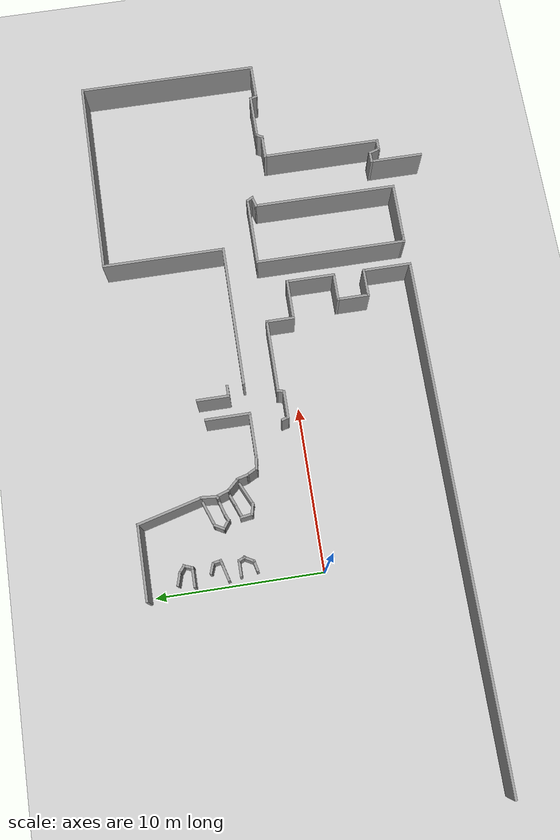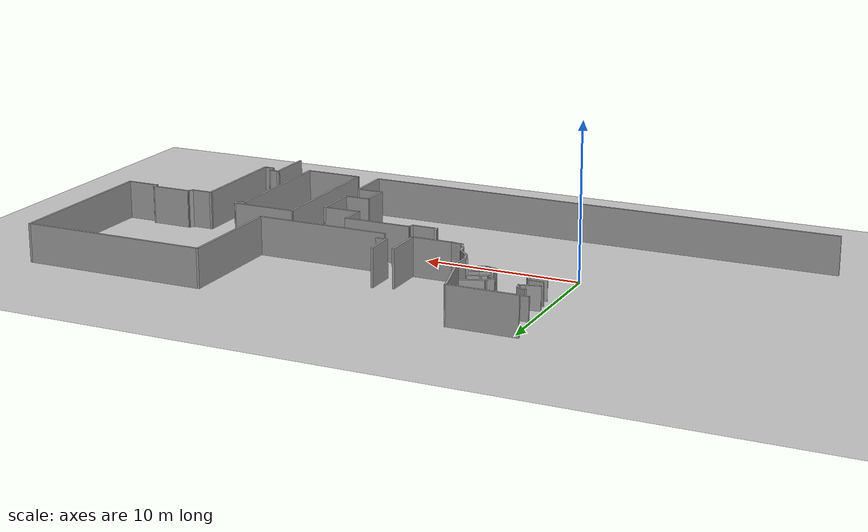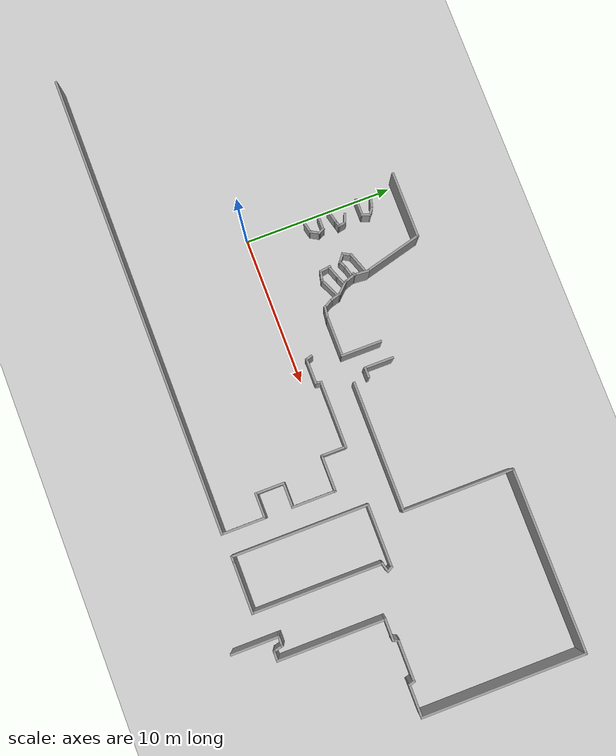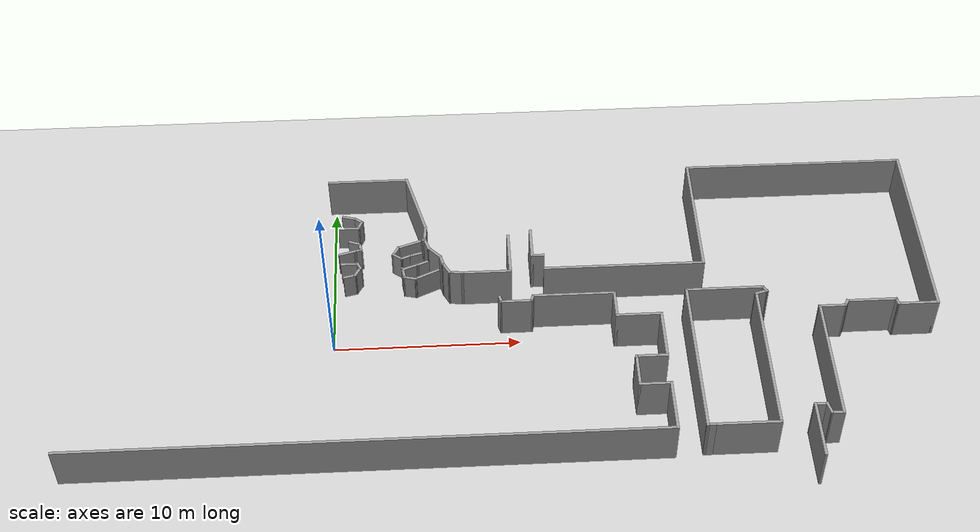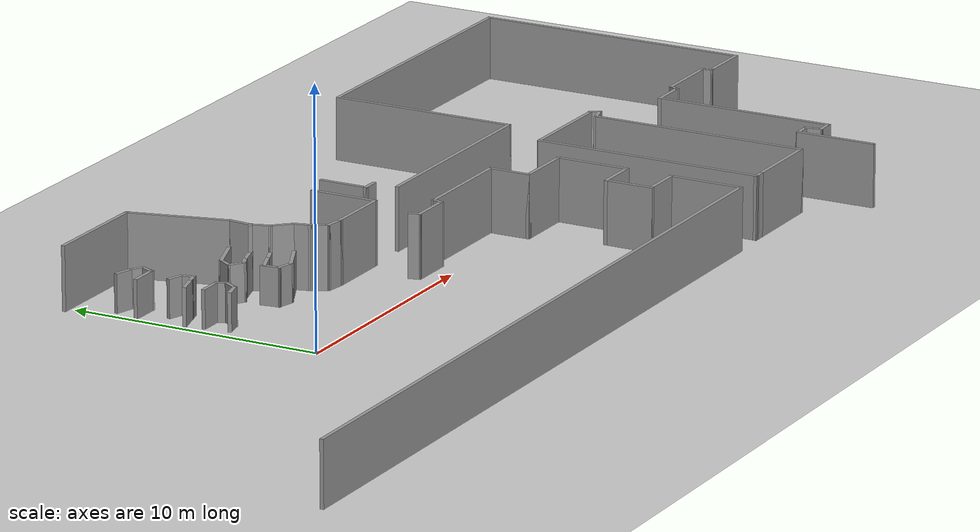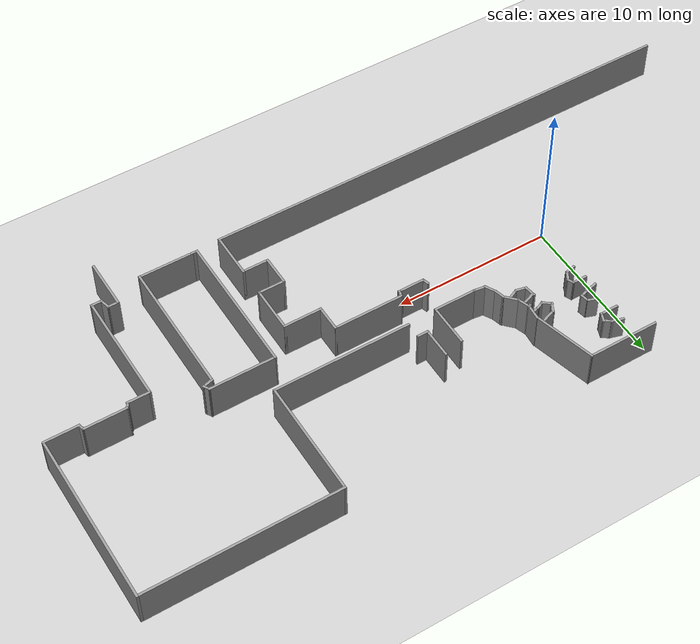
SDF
<sdf version="1.7">
 <world name="default">
  <model name="ground_plane">
   <static>1</static>
   <link name="link">
    <collision name="collision">
     <geometry><plane><normal>0 0 1</normal><size>100 100</size></plane></geometry>
     <surface><friction><ode><mu>100</mu><mu2>50</mu2></ode></friction></surface>
    </collision>
    <visual name="visual">
     <cast_shadows>0</cast_shadows>
     <geometry><plane><normal>0 0 1</normal><size>100 100</size></plane></geometry>
     <material>
      <script><uri>file://media/materials/scripts/gazebo.material</uri><name>Gazebo/Grey</name></script>
     </material>
    </visual>
   </link>
  </model>
  <model name="erzelli-sim">
   <pose>0.292126 0.213876 0 0 -0 0</pose>
   <link name="Wall_100">
    <collision name="Wall_100_Collision">
     <geometry><box><size>0.60562 0.15 1.5</size></box></geometry>
     <pose>0 0 0.75 0 -0 0</pose>
    </collision>
    <visual name="Wall_100_Visual">
     <pose>0 0 0.75 0 -0 0</pose>
     <geometry><box><size>0.60562 0.15 1.5</size></box></geometry>
     <material>
      <script><uri>file://media/materials/scripts/gazebo.material</uri><name>Gazebo/Grey</name></script>
      <ambient>1 1 1 1</ambient>
     </material>
     <meta><layer>0</layer></meta>
    </visual>
    <pose>3.64387 4.99562 0 0 -0 0.418447</pose>
   </link>
   <link name="Wall_101">
    <collision name="Wall_101_Collision">
     <geometry><box><size>0.969751 0.15 1.5</size></box></geometry>
     <pose>0 0 0.75 0 -0 0</pose>
    </collision>
    <visual name="Wall_101_Visual">
     <pose>0 0 0.75 0 -0 0</pose>
     <geometry><box><size>0.969751 0.15 1.5</size></box></geometry>
     <material>
      <script><uri>file://media/materials/scripts/gazebo.material</uri><name>Gazebo/Grey</name></script>
      <ambient>1 1 1 1</ambient>
     </material>
     <meta><layer>0</layer></meta>
    </visual>
    <pose>4.24537 5.20362 0 0 -0 0.285501</pose>
   </link>
   <link name="Wall_102">
    <collision name="Wall_102_Collision">
     <geometry><box><size>0.253443 0.15 2.5</size></box></geometry>
     <pose>0 0 1.25 0 -0 0</pose>
    </collision>
    <visual name="Wall_102_Visual">
     <pose>0 0 1.25 0 -0 0</pose>
     <geometry><box><size>0.253443 0.15 2.5</size></box></geometry>
     <material>
      <script><uri>file://media/materials/scripts/gazebo.material</uri><name>Gazebo/Grey</name></script>
      <ambient>1 1 1 1</ambient>
     </material>
     <meta><layer>0</layer></meta>
    </visual>
    <pose>4.68501 5.34248 0 0 -0 0.468665</pose>
   </link>
   <link name="Wall_103">
    <collision name="Wall_103_Collision">
     <geometry><box><size>0.881454 0.15 2.5</size></box></geometry>
     <pose>0 0 1.25 0 -0 0</pose>
    </collision>
    <visual name="Wall_103_Visual">
     <pose>0 0 1.25 0 -0 0</pose>
     <geometry><box><size>0.881454 0.15 2.5</size></box></geometry>
     <material>
      <script><uri>file://media/materials/scripts/gazebo.material</uri><name>Gazebo/Grey</name></script>
      <ambient>1 1 1 1</ambient>
     </material>
     <meta><layer>0</layer></meta>
    </visual>
    <pose>4.84701 5.01898 0 0 -0 -1.24842</pose>
   </link>
   <link name="Wall_104">
    <collision name="Wall_104_Collision">
     <geometry><box><size>0.89761 0.15 1.5</size></box></geometry>
     <pose>0 0 0.75 0 -0 0</pose>
    </collision>
    <visual name="Wall_104_Visual">
     <pose>0 0 0.75 0 -0 0</pose>
     <geometry><box><size>0.89761 0.15 1.5</size></box></geometry>
     <material>
      <script><uri>file://media/materials/scripts/gazebo.material</uri><name>Gazebo/Grey</name></script>
      <ambient>1 1 1 1</ambient>
     </material>
     <meta><layer>0</layer></meta>
    </visual>
    <pose>4.61587 4.53312 0 0 -0 -2.76059</pose>
   </link>
   <link name="Wall_105">
    <collision name="Wall_105_Collision">
     <geometry><box><size>0.941082 0.15 1.5</size></box></geometry>
     <pose>0 0 0.75 0 -0 0</pose>
    </collision>
    <visual name="Wall_105_Visual">
     <pose>0 0 0.75 0 -0 0</pose>
     <geometry><box><size>0.941082 0.15 1.5</size></box></geometry>
     <material>
      <script><uri>file://media/materials/scripts/gazebo.material</uri><name>Gazebo/Grey</name></script>
      <ambient>1 1 1 1</ambient>
     </material>
     <meta><layer>0</layer></meta>
    </visual>
    <pose>3.89837 4.25562 0 0 -0 -2.78386</pose>
   </link>
   <link name="Wall_107">
    <collision name="Wall_107_Collision">
     <geometry><box><size>0.804537 0.15 1.5</size></box></geometry>
     <pose>0 0 0.75 0 -0 0</pose>
    </collision>
    <visual name="Wall_107_Visual">
     <pose>0 0 0.75 0 -0 0</pose>
     <geometry><box><size>0.804537 0.15 1.5</size></box></geometry>
     <material>
      <script><uri>file://media/materials/scripts/gazebo.material</uri><name>Gazebo/Grey</name></script>
      <ambient>1 1 1 1</ambient>
     </material>
     <meta><layer>0</layer></meta>
    </visual>
    <pose>3.52837 3.83912 0 0 -0 -1.42825</pose>
   </link>
   <link name="Wall_108">
    <collision name="Wall_108_Collision">
     <geometry><box><size>0.767202 0.15 1.5</size></box></geometry>
     <pose>0 0 0.75 0 -0 0</pose>
    </collision>
    <visual name="Wall_108_Visual">
     <pose>0 0 0.75 0 -0 0</pose>
     <geometry><box><size>0.767202 0.15 1.5</size></box></geometry>
     <material>
      <script><uri>file://media/materials/scripts/gazebo.material</uri><name>Gazebo/Grey</name></script>
      <ambient>1 1 1 1</ambient>
     </material>
     <meta><layer>0</layer></meta>
    </visual>
    <pose>3.87537 3.44562 0 0 -0 -0.227285</pose>
   </link>
   <link name="Wall_109">
    <collision name="Wall_109_Collision">
     <geometry><box><size>1.68186 0.15 1.5</size></box></geometry>
     <pose>0 0 0.75 0 -0 0</pose>
    </collision>
    <visual name="Wall_109_Visual">
     <pose>0 0 0.75 0 -0 0</pose>
     <geometry><box><size>1.68186 0.15 1.5</size></box></geometry>
     <material>
      <script><uri>file://media/materials/scripts/gazebo.material</uri><name>Gazebo/Grey</name></script>
      <ambient>1 1 1 1</ambient>
     </material>
     <meta><layer>0</layer></meta>
    </visual>
    <pose>4.86987 3.70012 0 0 -0 0.436785</pose>
   </link>
   <link name="Wall_110">
    <collision name="Wall_110_Collision">
     <geometry><box><size>0.75 0.15 2.5</size></box></geometry>
     <pose>0 0 1.25 0 -0 0</pose>
    </collision>
    <visual name="Wall_110_Visual">
     <pose>0 0 1.25 0 -0 0</pose>
     <geometry><box><size>0.75 0.15 2.5</size></box></geometry>
     <material>
      <script><uri>file://media/materials/scripts/gazebo.material</uri><name>Gazebo/Grey</name></script>
      <ambient>1 1 1 1</ambient>
     </material>
     <meta><layer>0</layer></meta>
    </visual>
    <pose>5.64151 3.73442 0 0 -0 -1.30896</pose>
   </link>
   <link name="Wall_111">
    <collision name="Wall_111_Collision">
     <geometry><box><size>0.803717 0.15 2.5</size></box></geometry>
     <pose>0 0 1.25 0 -0 0</pose>
    </collision>
    <visual name="Wall_111_Visual">
     <pose>0 0 1.25 0 -0 0</pose>
     <geometry><box><size>0.803717 0.15 2.5</size></box></geometry>
     <material>
      <script><uri>file://media/materials/scripts/gazebo.material</uri><name>Gazebo/Grey</name></script>
      <ambient>1 1 1 1</ambient>
     </material>
     <meta><layer>0</layer></meta>
    </visual>
    <pose>5.87281 3.15623 0 0 -0 -1.08138</pose>
   </link>
   <link name="Wall_112">
    <collision name="Wall_112_Collision">
     <geometry><box><size>0.850059 0.15 2.5</size></box></geometry>
     <pose>0 0 1.25 0 -0 0</pose>
    </collision>
    <visual name="Wall_112_Visual">
     <pose>0 0 1.25 0 -0 0</pose>
     <geometry><box><size>0.850059 0.15 2.5</size></box></geometry>
     <material>
      <script><uri>file://media/materials/scripts/gazebo.material</uri><name>Gazebo/Grey</name></script>
      <ambient>1 1 1 1</ambient>
     </material>
     <meta><layer>0</layer></meta>
    </visual>
    <pose>6.37343 2.82148 0 0 -0 -0.132552</pose>
   </link>
   <link name="Wall_113">
    <collision name="Wall_113_Collision">
     <geometry><box><size>2.75 0.15 2.5</size></box></geometry>
     <pose>0 0 1.25 0 -0 0</pose>
    </collision>
    <visual name="Wall_113_Visual">
     <pose>0 0 1.25 0 -0 0</pose>
     <geometry><box><size>2.75 0.15 2.5</size></box></geometry>
     <material>
      <script><uri>file://media/materials/scripts/gazebo.material</uri><name>Gazebo/Grey</name></script>
      <ambient>1 1 1 1</ambient>
     </material>
     <meta><layer>0</layer></meta>
    </visual>
    <pose>8.02039 2.77522 0 0 -0 0</pose>
   </link>
   <link name="Wall_114">
    <collision name="Wall_114_Collision">
     <geometry><box><size>2.75 0.15 2.5</size></box></geometry>
     <pose>0 0 1.25 0 -0 0</pose>
    </collision>
    <visual name="Wall_114_Visual">
     <pose>0 0 1.25 0 -0 0</pose>
     <geometry><box><size>2.75 0.15 2.5</size></box></geometry>
     <material>
      <script><uri>file://media/materials/scripts/gazebo.material</uri><name>Gazebo/Grey</name></script>
      <ambient>1 1 1 1</ambient>
     </material>
     <meta><layer>0</layer></meta>
    </visual>
    <pose>9.32039 4.07522 0 0 -0 1.5708</pose>
   </link>
   <link name="Wall_117">
    <collision name="Wall_117_Collision">
     <geometry><box><size>8.75 0.15 2.5</size></box></geometry>
     <pose>0 0 1.25 0 -0 0</pose>
    </collision>
    <visual name="Wall_117_Visual">
     <pose>0 0 1.25 0 -0 0</pose>
     <geometry><box><size>8.75 0.15 2.5</size></box></geometry>
     <material>
      <script><uri>file://media/materials/scripts/gazebo.material</uri><name>Gazebo/Grey</name></script>
      <ambient>1 1 1 1</ambient>
     </material>
     <meta><layer>0</layer></meta>
    </visual>
    <pose>15.5077 2.86774 0 0 -0 0</pose>
   </link>
   <link name="Wall_118">
    <collision name="Wall_118_Collision">
     <geometry><box><size>7.5 0.15 2.5</size></box></geometry>
     <pose>0 0 1.25 0 -0 0</pose>
    </collision>
    <visual name="Wall_118_Visual">
     <pose>0 0 1.25 0 -0 0</pose>
     <geometry><box><size>7.5 0.15 2.5</size></box></geometry>
     <material>
      <script><uri>file://media/materials/scripts/gazebo.material</uri><name>Gazebo/Grey</name></script>
      <ambient>1 1 1 1</ambient>
     </material>
     <meta><layer>0</layer></meta>
    </visual>
    <pose>19.8077 6.54274 0 0 -0 1.5708</pose>
   </link>
   <link name="Wall_119">
    <collision name="Wall_119_Collision">
     <geometry><box><size>12.25 0.15 2.5</size></box></geometry>
     <pose>0 0 1.25 0 -0 0</pose>
    </collision>
    <visual name="Wall_119_Visual">
     <pose>0 0 1.25 0 -0 0</pose>
     <geometry><box><size>12.25 0.15 2.5</size></box></geometry>
     <material>
      <script><uri>file://media/materials/scripts/gazebo.material</uri><name>Gazebo/Grey</name></script>
      <ambient>1 1 1 1</ambient>
     </material>
     <meta><layer>0</layer></meta>
    </visual>
    <pose>25.8577 10.2177 0 0 -0 0</pose>
   </link>
   <link name="Wall_120">
    <collision name="Wall_120_Collision">
     <geometry><box><size>11 0.15 2.5</size></box></geometry>
     <pose>0 0 1.25 0 -0 0</pose>
    </collision>
    <visual name="Wall_120_Visual">
     <pose>0 0 1.25 0 -0 0</pose>
     <geometry><box><size>11 0.15 2.5</size></box></geometry>
     <material>
      <script><uri>file://media/materials/scripts/gazebo.material</uri><name>Gazebo/Grey</name></script>
      <ambient>1 1 1 1</ambient>
     </material>
     <meta><layer>0</layer></meta>
    </visual>
    <pose>31.9077 4.79274 0 0 -0 -1.5708</pose>
   </link>
   <link name="Wall_121">
    <collision name="Wall_121_Collision">
     <geometry><box><size>2.25 0.15 2.5</size></box></geometry>
     <pose>0 0 1.25 0 -0 0</pose>
    </collision>
    <visual name="Wall_121_Visual">
     <pose>0 0 1.25 0 -0 0</pose>
     <geometry><box><size>2.25 0.15 2.5</size></box></geometry>
     <material>
      <script><uri>file://media/materials/scripts/gazebo.material</uri><name>Gazebo/Grey</name></script>
      <ambient>1 1 1 1</ambient>
     </material>
     <meta><layer>0</layer></meta>
    </visual>
    <pose>30.8577 -0.632261 0 0 -0 3.14159</pose>
   </link>
   <link name="Wall_122">
    <collision name="Wall_122_Collision">
     <geometry><box><size>0.5 0.15 2.5</size></box></geometry>
     <pose>0 0 1.25 0 -0 0</pose>
    </collision>
    <visual name="Wall_122_Visual">
     <pose>0 0 1.25 0 -0 0</pose>
     <geometry><box><size>0.5 0.15 2.5</size></box></geometry>
     <material>
      <script><uri>file://media/materials/scripts/gazebo.material</uri><name>Gazebo/Grey</name></script>
      <ambient>1 1 1 1</ambient>
     </material>
     <meta><layer>0</layer></meta>
    </visual>
    <pose>29.7624 -0.463224 0 0 -0 1.8326</pose>
   </link>
   <link name="Wall_123">
    <collision name="Wall_123_Collision">
     <geometry><box><size>2.75 0.15 2.5</size></box></geometry>
     <pose>0 0 1.25 0 -0 0</pose>
    </collision>
    <visual name="Wall_123_Visual">
     <pose>0 0 1.25 0 -0 0</pose>
     <geometry><box><size>2.75 0.15 2.5</size></box></geometry>
     <material>
      <script><uri>file://media/materials/scripts/gazebo.material</uri><name>Gazebo/Grey</name></script>
      <ambient>1 1 1 1</ambient>
     </material>
     <meta><layer>0</layer></meta>
    </visual>
    <pose>28.4171 -0.294187 0 0 -0 3.14159</pose>
   </link>
   <link name="Wall_124">
    <collision name="Wall_124_Collision">
     <geometry><box><size>0.5 0.15 2.5</size></box></geometry>
     <pose>0 0 1.25 0 -0 0</pose>
    </collision>
    <visual name="Wall_124_Visual">
     <pose>0 0 1.25 0 -0 0</pose>
     <geometry><box><size>0.5 0.15 2.5</size></box></geometry>
     <material>
      <script><uri>file://media/materials/scripts/gazebo.material</uri><name>Gazebo/Grey</name></script>
      <ambient>1 1 1 1</ambient>
     </material>
     <meta><layer>0</layer></meta>
    </visual>
    <pose>27.0296 -0.445741 0 0 -0 -2.0944</pose>
   </link>
   <link name="Wall_125">
    <collision name="Wall_125_Collision">
     <geometry><box><size>1.5 0.15 2.5</size></box></geometry>
     <pose>0 0 1.25 0 -0 0</pose>
    </collision>
    <visual name="Wall_125_Visual">
     <pose>0 0 1.25 0 -0 0</pose>
     <geometry><box><size>1.5 0.15 2.5</size></box></geometry>
     <material>
      <script><uri>file://media/materials/scripts/gazebo.material</uri><name>Gazebo/Grey</name></script>
      <ambient>1 1 1 1</ambient>
     </material>
     <meta><layer>0</layer></meta>
    </visual>
    <pose>26.2671 -0.597296 0 0 -0 3.14159</pose>
   </link>
   <link name="Wall_126">
    <collision name="Wall_126_Collision">
     <geometry><box><size>7.25 0.15 2.5</size></box></geometry>
     <pose>0 0 1.25 0 -0 0</pose>
    </collision>
    <visual name="Wall_126_Visual">
     <pose>0 0 1.25 0 -0 0</pose>
     <geometry><box><size>7.25 0.15 2.5</size></box></geometry>
     <material>
      <script><uri>file://media/materials/scripts/gazebo.material</uri><name>Gazebo/Grey</name></script>
      <ambient>1 1 1 1</ambient>
     </material>
     <meta><layer>0</layer></meta>
    </visual>
    <pose>25.5921 -4.14729 0 0 -0 -1.5708</pose>
   </link>
   <link name="Wall_127">
    <collision name="Wall_127_Collision">
     <geometry><box><size>0.75 0.15 2.5</size></box></geometry>
     <pose>0 0 1.25 0 -0 0</pose>
    </collision>
    <visual name="Wall_127_Visual">
     <pose>0 0 1.25 0 -0 0</pose>
     <geometry><box><size>0.75 0.15 2.5</size></box></geometry>
     <material>
      <script><uri>file://media/materials/scripts/gazebo.material</uri><name>Gazebo/Grey</name></script>
      <ambient>1 1 1 1</ambient>
     </material>
     <meta><layer>0</layer></meta>
    </visual>
    <pose>25.2921 -7.6973 0 0 -0 3.14159</pose>
   </link>
   <link name="Wall_128">
    <collision name="Wall_128_Collision">
     <geometry><box><size>0.75 0.15 2.5</size></box></geometry>
     <pose>0 0 1.25 0 -0 0</pose>
    </collision>
    <visual name="Wall_128_Visual">
     <pose>0 0 1.25 0 -0 0</pose>
     <geometry><box><size>0.75 0.15 2.5</size></box></geometry>
     <material>
      <script><uri>file://media/materials/scripts/gazebo.material</uri><name>Gazebo/Grey</name></script>
      <ambient>1 1 1 1</ambient>
     </material>
     <meta><layer>0</layer></meta>
    </visual>
    <pose>24.9145 -7.40752 0 0 -0 1.8326</pose>
   </link>
   <link name="Wall_129">
    <collision name="Wall_129_Collision">
     <geometry><box><size>0.75 0.15 2.5</size></box></geometry>
     <pose>0 0 1.25 0 -0 0</pose>
    </collision>
    <visual name="Wall_129_Visual">
     <pose>0 0 1.25 0 -0 0</pose>
     <geometry><box><size>0.75 0.15 2.5</size></box></geometry>
     <material>
      <script><uri>file://media/materials/scripts/gazebo.material</uri><name>Gazebo/Grey</name></script>
      <ambient>1 1 1 1</ambient>
     </material>
     <meta><layer>0</layer></meta>
    </visual>
    <pose>24.5368 -7.11774 0 0 -0 3.14159</pose>
   </link>
   <link name="Wall_130">
    <collision name="Wall_130_Collision">
     <geometry><box><size>3.25 0.15 2.5</size></box></geometry>
     <pose>0 0 1.25 0 -0 0</pose>
    </collision>
    <visual name="Wall_130_Visual">
     <pose>0 0 1.25 0 -0 0</pose>
     <geometry><box><size>3.25 0.15 2.5</size></box></geometry>
     <material>
      <script><uri>file://media/materials/scripts/gazebo.material</uri><name>Gazebo/Grey</name></script>
      <ambient>1 1 1 1</ambient>
     </material>
     <meta><layer>0</layer></meta>
    </visual>
    <pose>24.2368 -8.66774 0 0 -0 -1.5708</pose>
   </link>
   <link name="Wall_135">
    <collision name="Wall_135_Collision">
     <geometry><box><size>4.25 0.15 2.5</size></box></geometry>
     <pose>0 0 1.25 0 -0 0</pose>
    </collision>
    <visual name="Wall_135_Visual">
     <pose>0 0 1.25 0 -0 0</pose>
     <geometry><box><size>4.25 0.15 2.5</size></box></geometry>
     <material>
      <script><uri>file://media/materials/scripts/gazebo.material</uri><name>Gazebo/Grey</name></script>
      <ambient>1 1 1 1</ambient>
     </material>
     <meta><layer>0</layer></meta>
    </visual>
    <pose>20.7058 0.924768 0 0 -0 0</pose>
   </link>
   <link name="Wall_136">
    <collision name="Wall_136_Collision">
     <geometry><box><size>0.5 0.15 2.5</size></box></geometry>
     <pose>0 0 1.25 0 -0 0</pose>
    </collision>
    <visual name="Wall_136_Visual">
     <pose>0 0 1.25 0 -0 0</pose>
     <geometry><box><size>0.5 0.15 2.5</size></box></geometry>
     <material>
      <script><uri>file://media/materials/scripts/gazebo.material</uri><name>Gazebo/Grey</name></script>
      <ambient>1 1 1 1</ambient>
     </material>
     <meta><layer>0</layer></meta>
    </visual>
    <pose>22.8433 0.773214 0 0 -0 -1.0472</pose>
   </link>
   <link name="Wall_137">
    <collision name="Wall_137_Collision">
     <geometry><box><size>0.75 0.15 2.5</size></box></geometry>
     <pose>0 0 1.25 0 -0 0</pose>
    </collision>
    <visual name="Wall_137_Visual">
     <pose>0 0 1.25 0 -0 0</pose>
     <geometry><box><size>0.75 0.15 2.5</size></box></geometry>
     <material>
      <script><uri>file://media/materials/scripts/gazebo.material</uri><name>Gazebo/Grey</name></script>
      <ambient>1 1 1 1</ambient>
     </material>
     <meta><layer>0</layer></meta>
    </visual>
    <pose>22.641 0.544014 0 0 -0 -2.87979</pose>
   </link>
   <link name="Wall_138">
    <collision name="Wall_138_Collision">
     <geometry><box><size>8.75 0.15 2.5</size></box></geometry>
     <pose>0 0 1.25 0 -0 0</pose>
    </collision>
    <visual name="Wall_138_Visual">
     <pose>0 0 1.25 0 -0 0</pose>
     <geometry><box><size>8.75 0.15 2.5</size></box></geometry>
     <material>
      <script><uri>file://media/materials/scripts/gazebo.material</uri><name>Gazebo/Grey</name></script>
      <ambient>1 1 1 1</ambient>
     </material>
     <meta><layer>0</layer></meta>
    </visual>
    <pose>22.3512 -3.83363 0 0 -0 -1.5708</pose>
   </link>
   <link name="Wall_139">
    <collision name="Wall_139_Collision">
     <geometry><box><size>3.5 0.15 2.5</size></box></geometry>
     <pose>0 0 1.25 0 -0 0</pose>
    </collision>
    <visual name="Wall_139_Visual">
     <pose>0 0 1.25 0 -0 0</pose>
     <geometry><box><size>3.5 0.15 2.5</size></box></geometry>
     <material>
      <script><uri>file://media/materials/scripts/gazebo.material</uri><name>Gazebo/Grey</name></script>
      <ambient>1 1 1 1</ambient>
     </material>
     <meta><layer>0</layer></meta>
    </visual>
    <pose>20.6762 -8.13363 0 0 -0 3.14159</pose>
   </link>
   <link name="Wall_140">
    <collision name="Wall_140_Collision">
     <geometry><box><size>0.5 0.15 2.5</size></box></geometry>
     <pose>0 0 1.25 0 -0 0</pose>
    </collision>
    <visual name="Wall_140_Visual">
     <pose>0 0 1.25 0 -0 0</pose>
     <geometry><box><size>0.5 0.15 2.5</size></box></geometry>
     <material>
      <script><uri>file://media/materials/scripts/gazebo.material</uri><name>Gazebo/Grey</name></script>
      <ambient>1 1 1 1</ambient>
     </material>
     <meta><layer>0</layer></meta>
    </visual>
    <pose>18.8262 -8.13363 0 0 -0 3.14159</pose>
   </link>
   <link name="Wall_141">
    <collision name="Wall_141_Collision">
     <geometry><box><size>9.2084 0.15 2.5</size></box></geometry>
     <pose>0 0 1.25 0 -0 0</pose>
    </collision>
    <visual name="Wall_141_Visual">
     <pose>0 0 1.25 0 -0 0</pose>
     <geometry><box><size>9.2084 0.15 2.5</size></box></geometry>
     <material>
      <script><uri>file://media/materials/scripts/gazebo.material</uri><name>Gazebo/Grey</name></script>
      <ambient>1 1 1 1</ambient>
     </material>
     <meta><layer>0</layer></meta>
    </visual>
    <pose>18.6535 -3.60443 0 0 -0 1.57029</pose>
   </link>
   <link name="Wall_157">
    <collision name="Wall_157_Collision">
     <geometry><box><size>1.0338 0.15 2.5</size></box></geometry>
     <pose>0 0 1.25 0 -0 0</pose>
    </collision>
    <visual name="Wall_157_Visual">
     <pose>0 0 1.25 0 -0 0</pose>
     <geometry><box><size>1.0338 0.15 2.5</size></box></geometry>
     <material>
      <script><uri>file://media/materials/scripts/gazebo.material</uri><name>Gazebo/Grey</name></script>
      <ambient>1 1 1 1</ambient>
     </material>
     <meta><layer>0</layer></meta>
    </visual>
    <pose>5.26337 4.34812 0 0 -0 -0.823011</pose>
   </link>
   <link name="Wall_159">
    <collision name="Wall_159_Collision">
     <geometry><box><size>1.05499 0.15 2.5</size></box></geometry>
     <pose>0 0 1.25 0 -0 0</pose>
    </collision>
    <visual name="Wall_159_Visual">
     <pose>0 0 1.25 0 -0 0</pose>
     <geometry><box><size>1.05499 0.15 2.5</size></box></geometry>
     <material>
      <script><uri>file://media/materials/scripts/gazebo.material</uri><name>Gazebo/Grey</name></script>
      <ambient>1 1 1 1</ambient>
     </material>
     <meta><layer>0</layer></meta>
    </visual>
    <pose>4.77026 5.81665 0 0 -0 1.48427</pose>
   </link>
   <link name="Wall_162">
    <collision name="Wall_162_Collision">
     <geometry><box><size>0.668222 0.15 1.5</size></box></geometry>
     <pose>0 0 0.75 0 -0 0</pose>
    </collision>
    <visual name="Wall_162_Visual">
     <pose>0 0 0.75 0 -0 0</pose>
     <geometry><box><size>0.668222 0.15 1.5</size></box></geometry>
     <material>
      <script><uri>file://media/materials/scripts/gazebo.material</uri><name>Gazebo/Grey</name></script>
      <ambient>1 1 1 1</ambient>
     </material>
     <meta><layer>0</layer></meta>
    </visual>
    <pose>0.821374 6.23812 0 0 -0 -0.346791</pose>
   </link>
   <link name="Wall_168">
    <collision name="Wall_168_Collision">
     <geometry><box><size>2 0.15 2.5</size></box></geometry>
     <pose>0 0 1.25 0 -0 0</pose>
    </collision>
    <visual name="Wall_168_Visual">
     <pose>0 0 1.25 0 -0 0</pose>
     <geometry><box><size>2 0.15 2.5</size></box></geometry>
     <material>
      <script><uri>file://media/materials/scripts/gazebo.material</uri><name>Gazebo/Grey</name></script>
      <ambient>1 1 1 1</ambient>
     </material>
     <meta><layer>0</layer></meta>
    </visual>
    <pose>10.5623 4.77949 0 0 -0 -1.5708</pose>
   </link>
   <link name="Wall_169">
    <collision name="Wall_169_Collision">
     <geometry><box><size>0.75 0.15 2.5</size></box></geometry>
     <pose>0 0 1.25 0 -0 0</pose>
    </collision>
    <visual name="Wall_169_Visual">
     <pose>0 0 1.25 0 -0 0</pose>
     <geometry><box><size>0.75 0.15 2.5</size></box></geometry>
     <material>
      <script><uri>file://media/materials/scripts/gazebo.material</uri><name>Gazebo/Grey</name></script>
      <ambient>1 1 1 1</ambient>
     </material>
     <meta><layer>0</layer></meta>
    </visual>
    <pose>10.8623 3.85449 0 0 -0 0</pose>
   </link>
   <link name="Wall_38">
    <collision name="Wall_38_Collision">
     <geometry><box><size>0.5 0.15 2.5</size></box></geometry>
     <pose>0 0 1.25 0 -0 0</pose>
    </collision>
    <visual name="Wall_38_Visual">
     <pose>0 0 1.25 0 -0 0</pose>
     <geometry><box><size>0.5 0.15 2.5</size></box></geometry>
     <material>
      <script><uri>file://media/materials/scripts/gazebo.material</uri><name>Gazebo/Grey</name></script>
      <ambient>1 1 1 1</ambient>
     </material>
     <meta><layer>0</layer></meta>
    </visual>
    <pose>8.69579 0.755731 0 0 -0 -1.309</pose>
   </link>
   <link name="Wall_39">
    <collision name="Wall_39_Collision">
     <geometry><box><size>1.75 0.15 2.5</size></box></geometry>
     <pose>0 0 1.25 0 -0 0</pose>
    </collision>
    <visual name="Wall_39_Visual">
     <pose>0 0 1.25 0 -0 0</pose>
     <geometry><box><size>1.75 0.15 2.5</size></box></geometry>
     <material>
      <script><uri>file://media/materials/scripts/gazebo.material</uri><name>Gazebo/Grey</name></script>
      <ambient>1 1 1 1</ambient>
     </material>
     <meta><layer>0</layer></meta>
    </visual>
    <pose>9.54108 0.586694 0 0 -0 0</pose>
   </link>
   <link name="Wall_40">
    <collision name="Wall_40_Collision">
     <geometry><box><size>0.5 0.15 2.5</size></box></geometry>
     <pose>0 0 1.25 0 -0 0</pose>
    </collision>
    <visual name="Wall_40_Visual">
     <pose>0 0 1.25 0 -0 0</pose>
     <geometry><box><size>0.5 0.15 2.5</size></box></geometry>
     <material>
      <script><uri>file://media/materials/scripts/gazebo.material</uri><name>Gazebo/Grey</name></script>
      <ambient>1 1 1 1</ambient>
     </material>
     <meta><layer>0</layer></meta>
    </visual>
    <pose>10.3864 0.755731 0 0 -0 1.309</pose>
   </link>
   <link name="Wall_41">
    <collision name="Wall_41_Collision">
     <geometry><box><size>4.5 0.15 2.5</size></box></geometry>
     <pose>0 0 1.25 0 -0 0</pose>
    </collision>
    <visual name="Wall_41_Visual">
     <pose>0 0 1.25 0 -0 0</pose>
     <geometry><box><size>4.5 0.15 2.5</size></box></geometry>
     <material>
      <script><uri>file://media/materials/scripts/gazebo.material</uri><name>Gazebo/Grey</name></script>
      <ambient>1 1 1 1</ambient>
     </material>
     <meta><layer>0</layer></meta>
    </visual>
    <pose>12.6067 0.924768 0 0 -0 0</pose>
   </link>
   <link name="Wall_42">
    <collision name="Wall_42_Collision">
     <geometry><box><size>1.75 0.15 2.5</size></box></geometry>
     <pose>0 0 1.25 0 -0 0</pose>
    </collision>
    <visual name="Wall_42_Visual">
     <pose>0 0 1.25 0 -0 0</pose>
     <geometry><box><size>1.75 0.15 2.5</size></box></geometry>
     <material>
      <script><uri>file://media/materials/scripts/gazebo.material</uri><name>Gazebo/Grey</name></script>
      <ambient>1 1 1 1</ambient>
     </material>
     <meta><layer>0</layer></meta>
    </visual>
    <pose>14.7817 0.124768 0 0 -0 -1.5708</pose>
   </link>
   <link name="Wall_43">
    <collision name="Wall_43_Collision">
     <geometry><box><size>2.5 0.15 2.5</size></box></geometry>
     <pose>0 0 1.25 0 -0 0</pose>
    </collision>
    <visual name="Wall_43_Visual">
     <pose>0 0 1.25 0 -0 0</pose>
     <geometry><box><size>2.5 0.15 2.5</size></box></geometry>
     <material>
      <script><uri>file://media/materials/scripts/gazebo.material</uri><name>Gazebo/Grey</name></script>
      <ambient>1 1 1 1</ambient>
     </material>
     <meta><layer>0</layer></meta>
    </visual>
    <pose>15.9567 -0.675232 0 0 -0 0</pose>
   </link>
   <link name="Wall_44">
    <collision name="Wall_44_Collision">
     <geometry><box><size>3 0.15 2.5</size></box></geometry>
     <pose>0 0 1.25 0 -0 0</pose>
    </collision>
    <visual name="Wall_44_Visual">
     <pose>0 0 1.25 0 -0 0</pose>
     <geometry><box><size>3 0.15 2.5</size></box></geometry>
     <material>
      <script><uri>file://media/materials/scripts/gazebo.material</uri><name>Gazebo/Grey</name></script>
      <ambient>1 1 1 1</ambient>
     </material>
     <meta><layer>0</layer></meta>
    </visual>
    <pose>17.1317 -2.10023 0 0 -0 -1.5708</pose>
   </link>
   <link name="Wall_45">
    <collision name="Wall_45_Collision">
     <geometry><box><size>1.75 0.15 2.5</size></box></geometry>
     <pose>0 0 1.25 0 -0 0</pose>
    </collision>
    <visual name="Wall_45_Visual">
     <pose>0 0 1.25 0 -0 0</pose>
     <geometry><box><size>1.75 0.15 2.5</size></box></geometry>
     <material>
      <script><uri>file://media/materials/scripts/gazebo.material</uri><name>Gazebo/Grey</name></script>
      <ambient>1 1 1 1</ambient>
     </material>
     <meta><layer>0</layer></meta>
    </visual>
    <pose>16.3317 -3.52523 0 0 -0 3.14159</pose>
   </link>
   <link name="Wall_46">
    <collision name="Wall_46_Collision">
     <geometry><box><size>2 0.15 2.5</size></box></geometry>
     <pose>0 0 1.25 0 -0 0</pose>
    </collision>
    <visual name="Wall_46_Visual">
     <pose>0 0 1.25 0 -0 0</pose>
     <geometry><box><size>2 0.15 2.5</size></box></geometry>
     <material>
      <script><uri>file://media/materials/scripts/gazebo.material</uri><name>Gazebo/Grey</name></script>
      <ambient>1 1 1 1</ambient>
     </material>
     <meta><layer>0</layer></meta>
    </visual>
    <pose>15.5317 -4.45023 0 0 -0 -1.5708</pose>
   </link>
   <link name="Wall_47">
    <collision name="Wall_47_Collision">
     <geometry><box><size>1.75 0.15 2.5</size></box></geometry>
     <pose>0 0 1.25 0 -0 0</pose>
    </collision>
    <visual name="Wall_47_Visual">
     <pose>0 0 1.25 0 -0 0</pose>
     <geometry><box><size>1.75 0.15 2.5</size></box></geometry>
     <material>
      <script><uri>file://media/materials/scripts/gazebo.material</uri><name>Gazebo/Grey</name></script>
      <ambient>1 1 1 1</ambient>
     </material>
     <meta><layer>0</layer></meta>
    </visual>
    <pose>16.3317 -5.37523 0 0 -0 0</pose>
   </link>
   <link name="Wall_48">
    <collision name="Wall_48_Collision">
     <geometry><box><size>3 0.15 2.5</size></box></geometry>
     <pose>0 0 1.25 0 -0 0</pose>
    </collision>
    <visual name="Wall_48_Visual">
     <pose>0 0 1.25 0 -0 0</pose>
     <geometry><box><size>3 0.15 2.5</size></box></geometry>
     <material>
      <script><uri>file://media/materials/scripts/gazebo.material</uri><name>Gazebo/Grey</name></script>
      <ambient>1 1 1 1</ambient>
     </material>
     <meta><layer>0</layer></meta>
    </visual>
    <pose>17.1317 -6.80023 0 0 -0 -1.5708</pose>
   </link>
   <link name="Wall_49">
    <collision name="Wall_49_Collision">
     <geometry><box><size>31.25 0.15 2.5</size></box></geometry>
     <pose>0 0 1.25 0 -0 0</pose>
    </collision>
    <visual name="Wall_49_Visual">
     <pose>0 0 1.25 0 -0 0</pose>
     <geometry><box><size>31.25 0.15 2.5</size></box></geometry>
     <material>
      <script><uri>file://media/materials/scripts/gazebo.material</uri><name>Gazebo/Grey</name></script>
      <ambient>1 1 1 1</ambient>
     </material>
     <meta><layer>0</layer></meta>
    </visual>
    <pose>1.58167 -8.22523 0 0 -0 3.14159</pose>
   </link>
   <link name="Wall_68">
    <collision name="Wall_68_Collision">
     <geometry><box><size>0.721883 0.15 1.5</size></box></geometry>
     <pose>0 0 0.75 0 -0 0</pose>
    </collision>
    <visual name="Wall_68_Visual">
     <pose>0 0 0.75 0 -0 0</pose>
     <geometry><box><size>0.721883 0.15 1.5</size></box></geometry>
     <material>
      <script><uri>file://media/materials/scripts/gazebo.material</uri><name>Gazebo/Grey</name></script>
      <ambient>1 1 1 1</ambient>
     </material>
     <meta><layer>0</layer></meta>
    </visual>
    <pose>0.587148 3.7309 0 0 -0 0.232104</pose>
   </link>
   <link name="Wall_69">
    <collision name="Wall_69_Collision">
     <geometry><box><size>0.734079 0.15 1.5</size></box></geometry>
     <pose>0 0 0.75 0 -0 0</pose>
    </collision>
    <visual name="Wall_69_Visual">
     <pose>0 0 0.75 0 -0 0</pose>
     <geometry><box><size>0.734079 0.15 1.5</size></box></geometry>
     <material>
      <script><uri>file://media/materials/scripts/gazebo.material</uri><name>Gazebo/Grey</name></script>
      <ambient>1 1 1 1</ambient>
     </material>
     <meta><layer>0</layer></meta>
    </visual>
    <pose>1.02151 4.06226 0 0 -0 1.05374</pose>
   </link>
   <link name="Wall_70">
    <collision name="Wall_70_Collision">
     <geometry><box><size>0.510489 0.15 1.5</size></box></geometry>
     <pose>0 0 0.75 0 -0 0</pose>
    </collision>
    <visual name="Wall_70_Visual">
     <pose>0 0 0.75 0 -0 0</pose>
     <geometry><box><size>0.510489 0.15 1.5</size></box></geometry>
     <material>
      <script><uri>file://media/materials/scripts/gazebo.material</uri><name>Gazebo/Grey</name></script>
      <ambient>1 1 1 1</ambient>
     </material>
     <meta><layer>0</layer></meta>
    </visual>
    <pose>1.08987 4.47962 0 0 -0 2.00592</pose>
   </link>
   <link name="Wall_71">
    <collision name="Wall_71_Collision">
     <geometry><box><size>1 0.15 1.5</size></box></geometry>
     <pose>0 0 0.75 0 -0 0</pose>
    </collision>
    <visual name="Wall_71_Visual">
     <pose>0 0 0.75 0 -0 0</pose>
     <geometry><box><size>1 0.15 1.5</size></box></geometry>
     <material>
      <script><uri>file://media/materials/scripts/gazebo.material</uri><name>Gazebo/Grey</name></script>
      <ambient>1 1 1 1</ambient>
     </material>
     <meta><layer>0</layer></meta>
    </visual>
    <pose>0.588874 4.64312 0 0 -0 3.14159</pose>
   </link>
   <link name="Wall_75">
    <collision name="Wall_75_Collision">
     <geometry><box><size>1 0.15 1.5</size></box></geometry>
     <pose>0 0 0.75 0 -0 0</pose>
    </collision>
    <visual name="Wall_75_Visual">
     <pose>0 0 0.75 0 -0 0</pose>
     <geometry><box><size>1 0.15 1.5</size></box></geometry>
     <material>
      <script><uri>file://media/materials/scripts/gazebo.material</uri><name>Gazebo/Grey</name></script>
      <ambient>1 1 1 1</ambient>
     </material>
     <meta><layer>0</layer></meta>
    </visual>
    <pose>0.439374 5.48712 0 0 -0 0.261815</pose>
   </link>
   <link name="Wall_76">
    <collision name="Wall_76_Collision">
     <geometry><box><size>0.5 0.15 1.5</size></box></geometry>
     <pose>0 0 0.75 0 -0 0</pose>
    </collision>
    <visual name="Wall_76_Visual">
     <pose>0 0 0.75 0 -0 0</pose>
     <geometry><box><size>0.5 0.15 1.5</size></box></geometry>
     <material>
      <script><uri>file://media/materials/scripts/gazebo.material</uri><name>Gazebo/Grey</name></script>
      <ambient>1 1 1 1</ambient>
     </material>
     <meta><layer>0</layer></meta>
    </visual>
    <pose>1.01887 5.64262 0 0 -0 0.262995</pose>
   </link>
   <link name="Wall_77">
    <collision name="Wall_77_Collision">
     <geometry><box><size>0.526313 0.15 1.5</size></box></geometry>
     <pose>0 0 0.75 0 -0 0</pose>
    </collision>
    <visual name="Wall_77_Visual">
     <pose>0 0 0.75 0 -0 0</pose>
     <geometry><box><size>0.526313 0.15 1.5</size></box></geometry>
     <material>
      <script><uri>file://media/materials/scripts/gazebo.material</uri><name>Gazebo/Grey</name></script>
      <ambient>1 1 1 1</ambient>
     </material>
     <meta><layer>0</layer></meta>
    </visual>
    <pose>1.15439 5.87328 0 0 -0 1.74972</pose>
   </link>
   <link name="Wall_83">
    <collision name="Wall_83_Collision">
     <geometry><box><size>1.21401 0.15 1.5</size></box></geometry>
     <pose>0 0 0.75 0 -0 0</pose>
    </collision>
    <visual name="Wall_83_Visual">
     <pose>0 0 0.75 0 -0 0</pose>
     <geometry><box><size>1.21401 0.15 1.5</size></box></geometry>
     <material>
      <script><uri>file://media/materials/scripts/gazebo.material</uri><name>Gazebo/Grey</name></script>
      <ambient>1 1 1 1</ambient>
     </material>
     <meta><layer>0</layer></meta>
    </visual>
    <pose>0.497874 7.35512 0 0 -0 0</pose>
   </link>
   <link name="Wall_84">
    <collision name="Wall_84_Collision">
     <geometry><box><size>0.648249 0.15 1.5</size></box></geometry>
     <pose>0 0 0.75 0 -0 0</pose>
    </collision>
    <visual name="Wall_84_Visual">
     <pose>0 0 0.75 0 -0 0</pose>
     <geometry><box><size>0.648249 0.15 1.5</size></box></geometry>
     <material>
      <script><uri>file://media/materials/scripts/gazebo.material</uri><name>Gazebo/Grey</name></script>
      <ambient>1 1 1 1</ambient>
     </material>
     <meta><layer>0</layer></meta>
    </visual>
    <pose>1.12237 7.58662 0 0 -0 1.19066</pose>
   </link>
   <link name="Wall_85">
    <collision name="Wall_85_Collision">
     <geometry><box><size>0.612612 0.15 1.5</size></box></geometry>
     <pose>0 0 0.75 0 -0 0</pose>
    </collision>
    <visual name="Wall_85_Visual">
     <pose>0 0 0.75 0 -0 0</pose>
     <geometry><box><size>0.612612 0.15 1.5</size></box></geometry>
     <material>
      <script><uri>file://media/materials/scripts/gazebo.material</uri><name>Gazebo/Grey</name></script>
      <ambient>1 1 1 1</ambient>
     </material>
     <meta><layer>0</layer></meta>
    </visual>
    <pose>1.02987 7.95662 0 0 -0 2.49896</pose>
   </link>
   <link name="Wall_86">
    <collision name="Wall_86_Collision">
     <geometry><box><size>0.829926 0.15 1.5</size></box></geometry>
     <pose>0 0 0.75 0 -0 0</pose>
    </collision>
    <visual name="Wall_86_Visual">
     <pose>0 0 0.75 0 -0 0</pose>
     <geometry><box><size>0.829926 0.15 1.5</size></box></geometry>
     <material>
      <script><uri>file://media/materials/scripts/gazebo.material</uri><name>Gazebo/Grey</name></script>
      <ambient>1 1 1 1</ambient>
     </material>
     <meta><layer>0</layer></meta>
    </visual>
    <pose>0.519213 8.19269 0 0 -0 2.8505</pose>
   </link>
   <link name="Wall_92">
    <collision name="Wall_92_Collision">
     <geometry><box><size>4.5 0.15 2.5</size></box></geometry>
     <pose>0 0 1.25 0 -0 0</pose>
    </collision>
    <visual name="Wall_92_Visual">
     <pose>0 0 1.25 0 -0 0</pose>
     <geometry><box><size>4.5 0.15 2.5</size></box></geometry>
     <material>
      <script><uri>file://media/materials/scripts/gazebo.material</uri><name>Gazebo/Grey</name></script>
      <ambient>1 1 1 1</ambient>
     </material>
     <meta><layer>0</layer></meta>
    </visual>
    <pose>1.63238 10.0467 0 0 -0 0</pose>
   </link>
   <link name="Wall_93">
    <collision name="Wall_93_Collision">
     <geometry><box><size>3.99189 0.15 2.5</size></box></geometry>
     <pose>0 0 1.25 0 -0 0</pose>
    </collision>
    <visual name="Wall_93_Visual">
     <pose>0 0 1.25 0 -0 0</pose>
     <geometry><box><size>3.99189 0.15 2.5</size></box></geometry>
     <material>
      <script><uri>file://media/materials/scripts/gazebo.material</uri><name>Gazebo/Grey</name></script>
      <ambient>1 1 1 1</ambient>
     </material>
     <meta><layer>0</layer></meta>
    </visual>
    <pose>4.29286 8.18807 0 0 -0 -1.31529</pose>
   </link>
   <link name="Wall_97">
    <collision name="Wall_97_Collision">
     <geometry><box><size>1.67603 0.15 1.5</size></box></geometry>
     <pose>0 0 0.75 0 -0 0</pose>
    </collision>
    <visual name="Wall_97_Visual">
     <pose>0 0 0.75 0 -0 0</pose>
     <geometry><box><size>1.67603 0.15 1.5</size></box></geometry>
     <material>
      <script><uri>file://media/materials/scripts/gazebo.material</uri><name>Gazebo/Grey</name></script>
      <ambient>1 1 1 1</ambient>
     </material>
     <meta><layer>0</layer></meta>
    </visual>
    <pose>3.9776 6.0003 0 0 -0 -2.79818</pose>
   </link>
   <link name="Wall_98">
    <collision name="Wall_98_Collision">
     <geometry><box><size>0.722454 0.15 1.5</size></box></geometry>
     <pose>0 0 0.75 0 -0 0</pose>
    </collision>
    <visual name="Wall_98_Visual">
     <pose>0 0 0.75 0 -0 0</pose>
     <geometry><box><size>0.722454 0.15 1.5</size></box></geometry>
     <material>
      <script><uri>file://media/materials/scripts/gazebo.material</uri><name>Gazebo/Grey</name></script>
      <ambient>1 1 1 1</ambient>
     </material>
     <meta><layer>0</layer></meta>
    </visual>
    <pose>3.11928 5.49366 0 0 -0 -2.08132</pose>
   </link>
   <link name="Wall_99">
    <collision name="Wall_99_Collision">
     <geometry><box><size>0.719647 0.15 1.5</size></box></geometry>
     <pose>0 0 0.75 0 -0 0</pose>
    </collision>
    <visual name="Wall_99_Visual">
     <pose>0 0 0.75 0 -0 0</pose>
     <geometry><box><size>0.719647 0.15 1.5</size></box></geometry>
     <material>
      <script><uri>file://media/materials/scripts/gazebo.material</uri><name>Gazebo/Grey</name></script>
      <ambient>1 1 1 1</ambient>
     </material>
     <meta><layer>0</layer></meta>
    </visual>
    <pose>3.20765 5.07353 0 0 -0 -0.641342</pose>
   </link>
   <static>1</static>
  </model>
 </world>
</sdf>
